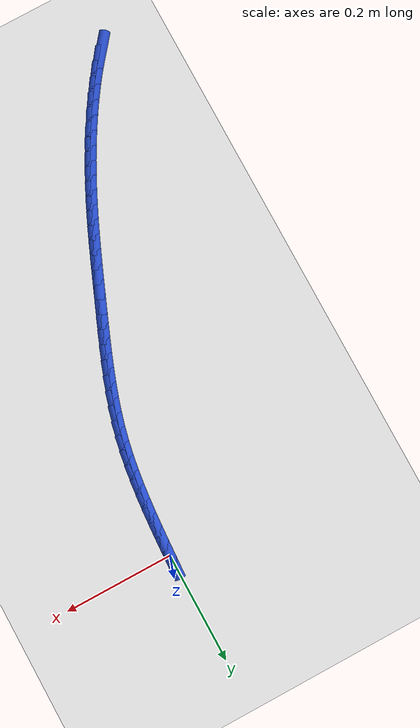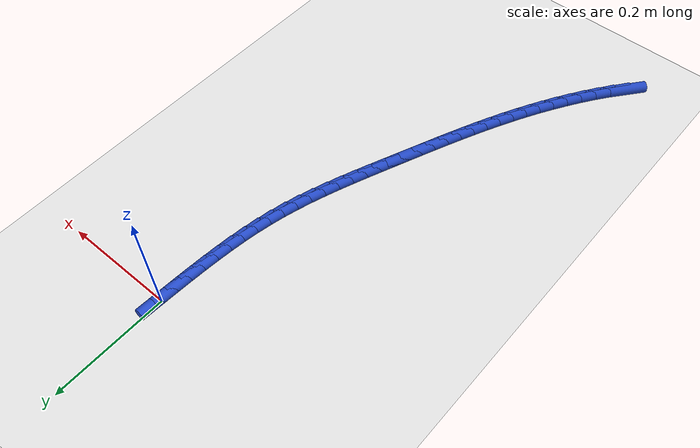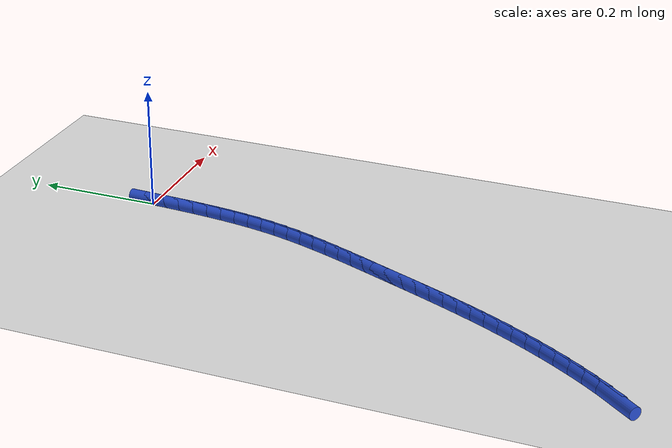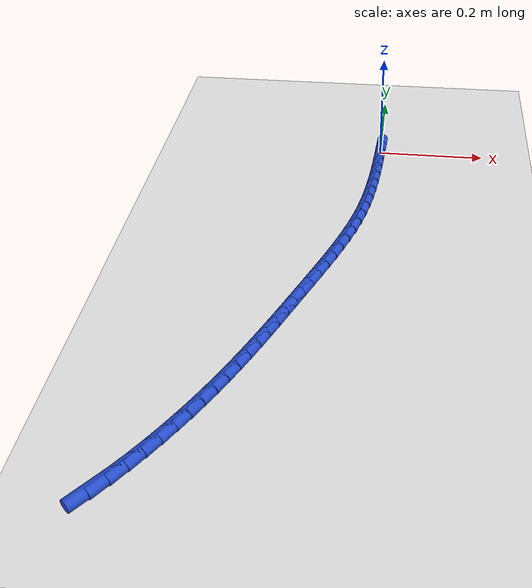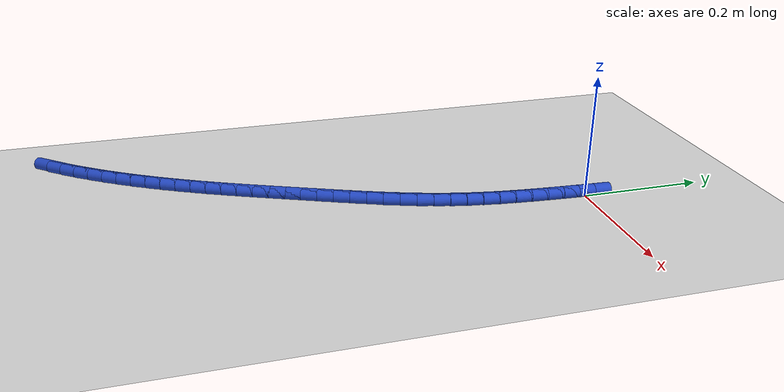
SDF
<sdf version="1.6">
 <world name="default">
  <model name="ground_plane">
   <static>1</static>
   <link name="link">
    <collision name="collision">
     <geometry><plane><normal>0 0 1</normal><size>100 100</size></plane></geometry>
     <surface><friction><ode><mu>100</mu><mu2>50</mu2></ode></friction></surface>
    </collision>
    <visual name="visual">
     <cast_shadows>0</cast_shadows>
     <geometry><plane><normal>0 0 1</normal><size>100 100</size></plane></geometry>
     <material>
      <script><uri>file://media/materials/scripts/gazebo.material</uri><name>Gazebo/WhiteGlow</name></script>
     </material>
    </visual>
   </link>
  </model>
  <model name="line">
   <link name="link_246">
    <pose>-0.31125695326911007 -0.8311491359233418 0.01 0 1.57 0.8892791873818585</pose>
    <collision name="collision">
     <geometry><cylinder><radius>0.01</radius><length>0.08</length></cylinder></geometry>
    </collision>
    <visual name="visual">
     <material>
      <script><name>Gazebo/Blue</name><uri>file://media/materials/scripts/gazebo.material</uri></script>
     </material>
     <geometry><cylinder><radius>0.01</radius><length>0.08</length></cylinder></geometry>
    </visual>
   </link>
   <link name="link_247">
    <pose>-0.293469321782806 -0.8092208715559097 0.01 0 1.57 0.9350703230213965</pose>
    <collision name="collision">
     <geometry><cylinder><radius>0.01</radius><length>0.08</length></cylinder></geometry>
    </collision>
    <visual name="visual">
     <material>
      <script><name>Gazebo/Blue</name><uri>file://media/materials/scripts/gazebo.material</uri></script>
     </material>
     <geometry><cylinder><radius>0.01</radius><length>0.08</length></cylinder></geometry>
    </visual>
   </link>
   <link name="link_248">
    <pose>-0.2766350198751128 -0.7864077404905816 0.01 0 1.57 0.9702680234953394</pose>
    <collision name="collision">
     <geometry><cylinder><radius>0.01</radius><length>0.08</length></cylinder></geometry>
    </collision>
    <visual name="visual">
     <material>
      <script><name>Gazebo/Blue</name><uri>file://media/materials/scripts/gazebo.material</uri></script>
     </material>
     <geometry><cylinder><radius>0.01</radius><length>0.08</length></cylinder></geometry>
    </visual>
   </link>
   <link name="link_249">
    <pose>-0.26071555731661455 -0.763164685619962 0.01 0 1.57 0.9973966479822268</pose>
    <collision name="collision">
     <geometry><cylinder><radius>0.01</radius><length>0.08</length></cylinder></geometry>
    </collision>
    <visual name="visual">
     <material>
      <script><name>Gazebo/Blue</name><uri>file://media/materials/scripts/gazebo.material</uri></script>
     </material>
     <geometry><cylinder><radius>0.01</radius><length>0.08</length></cylinder></geometry>
    </visual>
   </link>
   <link name="link_250">
    <pose>-0.24566700536215025 -0.7398616133941783 0.01 0 1.57 1.0222324117700672</pose>
    <collision name="collision">
     <geometry><cylinder><radius>0.01</radius><length>0.08</length></cylinder></geometry>
    </collision>
    <visual name="visual">
     <material>
      <script><name>Gazebo/Blue</name><uri>file://media/materials/scripts/gazebo.material</uri></script>
     </material>
     <geometry><cylinder><radius>0.01</radius><length>0.08</length></cylinder></geometry>
    </visual>
   </link>
   <link name="link_251">
    <pose>-0.2314255977774839 -0.7165582519761876 0.01 0 1.57 1.04585245475434</pose>
    <collision name="collision">
     <geometry><cylinder><radius>0.01</radius><length>0.08</length></cylinder></geometry>
    </collision>
    <visual name="visual">
     <material>
      <script><name>Gazebo/Blue</name><uri>file://media/materials/scripts/gazebo.material</uri></script>
     </material>
     <geometry><cylinder><radius>0.01</radius><length>0.08</length></cylinder></geometry>
    </visual>
   </link>
   <link name="link_252">
    <pose>-0.21792304656252648 -0.6932436273558064 0.01 0 1.57 1.0680613975604274</pose>
    <collision name="collision">
     <geometry><cylinder><radius>0.01</radius><length>0.08</length></cylinder></geometry>
    </collision>
    <visual name="visual">
     <material>
      <script><name>Gazebo/Blue</name><uri>file://media/materials/scripts/gazebo.material</uri></script>
     </material>
     <geometry><cylinder><radius>0.01</radius><length>0.08</length></cylinder></geometry>
    </visual>
   </link>
   <link name="link_253">
    <pose>-0.2050910637171901 -0.6699067655228526 0.01 0 1.57 1.0886781257992373</pose>
    <collision name="collision">
     <geometry><cylinder><radius>0.01</radius><length>0.08</length></cylinder></geometry>
    </collision>
    <visual name="visual">
     <material>
      <script><name>Gazebo/Blue</name><uri>file://media/materials/scripts/gazebo.material</uri></script>
     </material>
     <geometry><cylinder><radius>0.01</radius><length>0.08</length></cylinder></geometry>
    </visual>
   </link>
   <link name="link_254">
    <pose>-0.19286136124138567 -0.6465366924671427 0.01 0 1.57 1.1075389506269036</pose>
    <collision name="collision">
     <geometry><cylinder><radius>0.01</radius><length>0.08</length></cylinder></geometry>
    </collision>
    <visual name="visual">
     <material>
      <script><name>Gazebo/Blue</name><uri>file://media/materials/scripts/gazebo.material</uri></script>
     </material>
     <geometry><cylinder><radius>0.01</radius><length>0.08</length></cylinder></geometry>
    </visual>
   </link>
   <link name="link_255">
    <pose>-0.18116565113502442 -0.623122434178494 0.01 0 1.57 1.1245000134716454</pose>
    <collision name="collision">
     <geometry><cylinder><radius>0.01</radius><length>0.08</length></cylinder></geometry>
    </collision>
    <visual name="visual">
     <material>
      <script><name>Gazebo/Blue</name><uri>file://media/materials/scripts/gazebo.material</uri></script>
     </material>
     <geometry><cylinder><radius>0.01</radius><length>0.08</length></cylinder></geometry>
    </visual>
   </link>
   <link name="link_256">
    <pose>-0.16993564539801773 -0.5996530166467232 0.01 0 1.57 1.1394389210921314</pose>
    <collision name="collision">
     <geometry><cylinder><radius>0.01</radius><length>0.08</length></cylinder></geometry>
    </collision>
    <visual name="visual">
     <material>
      <script><name>Gazebo/Blue</name><uri>file://media/materials/scripts/gazebo.material</uri></script>
     </material>
     <geometry><cylinder><radius>0.01</radius><length>0.08</length></cylinder></geometry>
    </visual>
   </link>
   <link name="link_257">
    <pose>-0.15910305603027697 -0.5761174658616475 0.01 0 1.57 1.152255659272425</pose>
    <collision name="collision">
     <geometry><cylinder><radius>0.01</radius><length>0.08</length></cylinder></geometry>
    </collision>
    <visual name="visual">
     <material>
      <script><name>Gazebo/Blue</name><uri>file://media/materials/scripts/gazebo.material</uri></script>
     </material>
     <geometry><cylinder><radius>0.01</radius><length>0.08</length></cylinder></geometry>
    </visual>
   </link>
   <link name="link_258">
    <pose>-0.1485995950317133 -0.5525048078130834 0.01 0 1.57 1.1628728800017256</pose>
    <collision name="collision">
     <geometry><cylinder><radius>0.01</radius><length>0.08</length></cylinder></geometry>
    </collision>
    <visual name="visual">
     <material>
      <script><name>Gazebo/Blue</name><uri>file://media/materials/scripts/gazebo.material</uri></script>
     </material>
     <geometry><cylinder><radius>0.01</radius><length>0.08</length></cylinder></geometry>
    </visual>
   </link>
   <link name="link_259">
    <pose>-0.1383569744022381 -0.5288040684908486 0.01 0 1.57 1.1712356847592287</pose>
    <collision name="collision">
     <geometry><cylinder><radius>0.01</radius><length>0.08</length></cylinder></geometry>
    </collision>
    <visual name="visual">
     <material>
      <script><name>Gazebo/Blue</name><uri>file://media/materials/scripts/gazebo.material</uri></script>
     </material>
     <geometry><cylinder><radius>0.01</radius><length>0.08</length></cylinder></geometry>
    </visual>
   </link>
   <link name="link_260">
    <pose>-0.12830690614176266 -0.5050042738847595 0.01 0 1.57 1.1773110356256897</pose>
    <collision name="collision">
     <geometry><cylinder><radius>0.01</radius><length>0.08</length></cylinder></geometry>
    </collision>
    <visual name="visual">
     <material>
      <script><name>Gazebo/Blue</name><uri>file://media/materials/scripts/gazebo.material</uri></script>
     </material>
     <geometry><cylinder><radius>0.01</radius><length>0.08</length></cylinder></geometry>
    </visual>
   </link>
   <link name="link_261">
    <pose>-0.11838110225019803 -0.48109444998463285 0.01 0 1.57 1.1810869189628557</pose>
    <collision name="collision">
     <geometry><cylinder><radius>0.01</radius><length>0.08</length></cylinder></geometry>
    </collision>
    <visual name="visual">
     <material>
      <script><name>Gazebo/Blue</name><uri>file://media/materials/scripts/gazebo.material</uri></script>
     </material>
     <geometry><cylinder><radius>0.01</radius><length>0.08</length></cylinder></geometry>
    </visual>
   </link>
   <link name="link_262">
    <pose>-0.10851127472745609 -0.4570636227802869 0.01 0 1.57 1.182571443038041</pose>
    <collision name="collision">
     <geometry><cylinder><radius>0.01</radius><length>0.08</length></cylinder></geometry>
    </collision>
    <visual name="visual">
     <material>
      <script><name>Gazebo/Blue</name><uri>file://media/materials/scripts/gazebo.material</uri></script>
     </material>
     <geometry><cylinder><radius>0.01</radius><length>0.08</length></cylinder></geometry>
    </visual>
   </link>
   <link name="link_263">
    <pose>-0.09862913776702144 -0.43290081840823535 0.01 0 1.57 1.1830604139426044</pose>
    <collision name="collision">
     <geometry><cylinder><radius>0.01</radius><length>0.08</length></cylinder></geometry>
    </collision>
    <visual name="visual">
     <material>
      <script><name>Gazebo/Blue</name><uri>file://media/materials/scripts/gazebo.material</uri></script>
     </material>
     <geometry><cylinder><radius>0.01</radius><length>0.08</length></cylinder></geometry>
    </visual>
   </link>
   <link name="link_264">
    <pose>-0.08870341735287864 -0.4085975382084297 0.01 0 1.57 1.1870470047570645</pose>
    <collision name="collision">
     <geometry><cylinder><radius>0.01</radius><length>0.08</length></cylinder></geometry>
    </collision>
    <visual name="visual">
     <material>
      <script><name>Gazebo/Blue</name><uri>file://media/materials/scripts/gazebo.material</uri></script>
     </material>
     <geometry><cylinder><radius>0.01</radius><length>0.08</length></cylinder></geometry>
    </visual>
   </link>
   <link name="link_265">
    <pose>-0.07883395111362636 -0.38415405175356376 0.01 0 1.57 1.1954993915720467</pose>
    <collision name="collision">
     <geometry><cylinder><radius>0.01</radius><length>0.08</length></cylinder></geometry>
    </collision>
    <visual name="visual">
     <material>
      <script><name>Gazebo/Blue</name><uri>file://media/materials/scripts/gazebo.material</uri></script>
     </material>
     <geometry><cylinder><radius>0.01</radius><length>0.08</length></cylinder></geometry>
    </visual>
   </link>
   <link name="link_266">
    <pose>-0.06914959530049178 -0.35957256926804015 0.01 0 1.57 1.2084334174876794</pose>
    <collision name="collision">
     <geometry><cylinder><radius>0.01</radius><length>0.08</length></cylinder></geometry>
    </collision>
    <visual name="visual">
     <material>
      <script><name>Gazebo/Blue</name><uri>file://media/materials/scripts/gazebo.material</uri></script>
     </material>
     <geometry><cylinder><radius>0.01</radius><length>0.08</length></cylinder></geometry>
    </visual>
   </link>
   <link name="link_267">
    <pose>-0.05977920616470199 -0.3348553009762611 0.01 0 1.57 1.2259084012852077</pose>
    <collision name="collision">
     <geometry><cylinder><radius>0.01</radius><length>0.08</length></cylinder></geometry>
    </collision>
    <visual name="visual">
     <material>
      <script><name>Gazebo/Blue</name><uri>file://media/materials/scripts/gazebo.material</uri></script>
     </material>
     <geometry><cylinder><radius>0.01</radius><length>0.08</length></cylinder></geometry>
    </visual>
   </link>
   <link name="link_268">
    <pose>-0.050851639957484096 -0.3100044571026288 0.01 0 1.57 1.2480199711785995</pose>
    <collision name="collision">
     <geometry><cylinder><radius>0.01</radius><length>0.08</length></cylinder></geometry>
    </collision>
    <visual name="visual">
     <material>
      <script><name>Gazebo/Blue</name><uri>file://media/materials/scripts/gazebo.material</uri></script>
     </material>
     <geometry><cylinder><radius>0.01</radius><length>0.08</length></cylinder></geometry>
    </visual>
   </link>
   <link name="link_269">
    <pose>-0.042495752930065224 -0.28502224787154573 0.01 0 1.57 1.27489040736373</pose>
    <collision name="collision">
     <geometry><cylinder><radius>0.01</radius><length>0.08</length></cylinder></geometry>
    </collision>
    <visual name="visual">
     <material>
      <script><name>Gazebo/Blue</name><uri>file://media/materials/scripts/gazebo.material</uri></script>
     </material>
     <geometry><cylinder><radius>0.01</radius><length>0.08</length></cylinder></geometry>
    </visual>
   </link>
   <link name="link_270">
    <pose>-0.034840401333672236 -0.25991088350741326 0.01 0 1.57 1.3066555468291599</pose>
    <collision name="collision">
     <geometry><cylinder><radius>0.01</radius><length>0.08</length></cylinder></geometry>
    </collision>
    <visual name="visual">
     <material>
      <script><name>Gazebo/Blue</name><uri>file://media/materials/scripts/gazebo.material</uri></script>
     </material>
     <geometry><cylinder><radius>0.01</radius><length>0.08</length></cylinder></geometry>
    </visual>
   </link>
   <link name="link_271">
    <pose>-0.028014441419532746 -0.2346725742346354 0.01 0 1.57 1.3432370736969554</pose>
    <collision name="collision">
     <geometry><cylinder><radius>0.01</radius><length>0.08</length></cylinder></geometry>
    </collision>
    <visual name="visual">
     <material>
      <script><name>Gazebo/Blue</name><uri>file://media/materials/scripts/gazebo.material</uri></script>
     </material>
     <geometry><cylinder><radius>0.01</radius><length>0.08</length></cylinder></geometry>
    </visual>
   </link>
   <link name="link_272">
    <pose>-0.022140999500298707 -0.20930903390711883 0.01 0 1.57 1.3802605516905357</pose>
    <collision name="collision">
     <geometry><cylinder><radius>0.01</radius><length>0.08</length></cylinder></geometry>
    </collision>
    <visual name="visual">
     <material>
      <script><name>Gazebo/Blue</name><uri>file://media/materials/scripts/gazebo.material</uri></script>
     </material>
     <geometry><cylinder><radius>0.01</radius><length>0.08</length></cylinder></geometry>
    </visual>
   </link>
   <link name="link_273">
    <pose>-0.01722316526511026 -0.18381157790112065 0.01 0 1.57 1.4133197256500463</pose>
    <collision name="collision">
     <geometry><cylinder><radius>0.01</radius><length>0.08</length></cylinder></geometry>
    </collision>
    <visual name="visual">
     <material>
      <script><name>Gazebo/Blue</name><uri>file://media/materials/scripts/gazebo.material</uri></script>
     </material>
     <geometry><cylinder><radius>0.01</radius><length>0.08</length></cylinder></geometry>
    </visual>
   </link>
   <link name="link_274">
    <pose>-0.013150178937518353 -0.15816165909353122 0.01 0 1.57 1.4420309860129175</pose>
    <collision name="collision">
     <geometry><cylinder><radius>0.01</radius><length>0.08</length></cylinder></geometry>
    </collision>
    <visual name="visual">
     <material>
      <script><name>Gazebo/Blue</name><uri>file://media/materials/scripts/gazebo.material</uri></script>
     </material>
     <geometry><cylinder><radius>0.01</radius><length>0.08</length></cylinder></geometry>
    </visual>
   </link>
   <link name="link_275">
    <pose>-0.009806789320532016 -0.13234034128051872 0.01 0 1.57 1.466262544178213</pose>
    <collision name="collision">
     <geometry><cylinder><radius>0.01</radius><length>0.08</length></cylinder></geometry>
    </collision>
    <visual name="visual">
     <material>
      <script><name>Gazebo/Blue</name><uri>file://media/materials/scripts/gazebo.material</uri></script>
     </material>
     <geometry><cylinder><radius>0.01</radius><length>0.08</length></cylinder></geometry>
    </visual>
   </link>
   <link name="link_276">
    <pose>-0.007077745217160279 -0.10632868825825147 0.01 0 1.57 1.4859558058539717</pose>
    <collision name="collision">
     <geometry><cylinder><radius>0.01</radius><length>0.08</length></cylinder></geometry>
    </collision>
    <visual name="visual">
     <material>
      <script><name>Gazebo/Blue</name><uri>file://media/materials/scripts/gazebo.material</uri></script>
     </material>
     <geometry><cylinder><radius>0.01</radius><length>0.08</length></cylinder></geometry>
    </visual>
   </link>
   <link name="link_277">
    <pose>-0.004847795430412181 -0.08010776382289778 0.01 0 1.57 1.5011109611877802</pose>
    <collision name="collision">
     <geometry><cylinder><radius>0.01</radius><length>0.08</length></cylinder></geometry>
    </collision>
    <visual name="visual">
     <material>
      <script><name>Gazebo/Blue</name><uri>file://media/materials/scripts/gazebo.material</uri></script>
     </material>
     <geometry><cylinder><radius>0.01</radius><length>0.08</length></cylinder></geometry>
    </visual>
   </link>
   <link name="link_278">
    <pose>-0.003001688763296752 -0.05365863177062593 0.01 0 1.57 1.5117737693595992</pose>
    <collision name="collision">
     <geometry><cylinder><radius>0.01</radius><length>0.08</length></cylinder></geometry>
    </collision>
    <visual name="visual">
     <material>
      <script><name>Gazebo/Blue</name><uri>file://media/materials/scripts/gazebo.material</uri></script>
     </material>
     <geometry><cylinder><radius>0.01</radius><length>0.08</length></cylinder></geometry>
    </visual>
   </link>
   <link name="link_279">
    <pose>-0.0014241740188229886 -0.02696235589760343 0.01 0 1.57 1.5180245387436027</pose>
    <collision name="collision">
     <geometry><cylinder><radius>0.01</radius><length>0.08</length></cylinder></geometry>
    </collision>
    <visual name="visual">
     <material>
      <script><name>Gazebo/Blue</name><uri>file://media/materials/scripts/gazebo.material</uri></script>
     </material>
     <geometry><cylinder><radius>0.01</radius><length>0.08</length></cylinder></geometry>
    </visual>
   </link>
   <link name="link_280">
    <pose>-1.3227266504323154e-17 -1.8041124150158794e-16 0.01 0 1.57 1.5199697479309235</pose>
    <collision name="collision">
     <geometry><cylinder><radius>0.01</radius><length>0.08</length></cylinder></geometry>
    </collision>
    <visual name="visual">
     <material>
      <script><name>Gazebo/Blue</name><uri>file://media/materials/scripts/gazebo.material</uri></script>
     </material>
     <geometry><cylinder><radius>0.01</radius><length>0.08</length></cylinder></geometry>
    </visual>
   </link>
  </model>
 </world>
</sdf>
